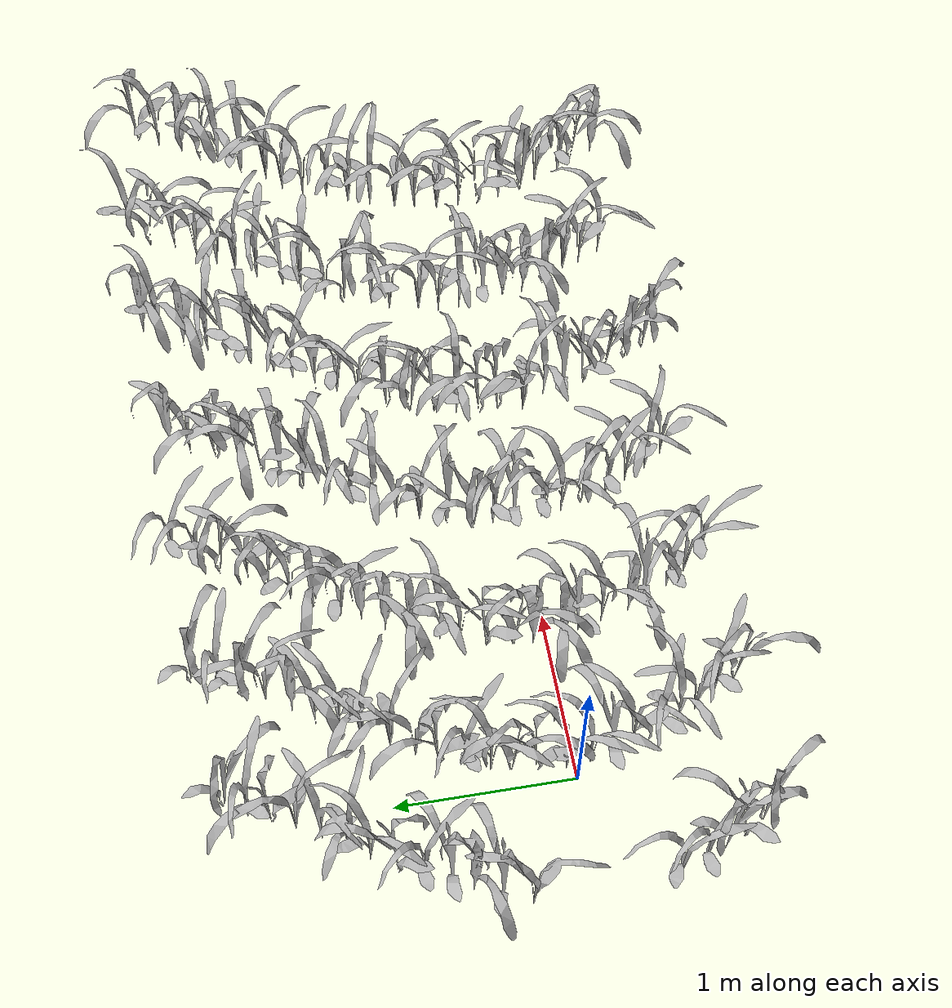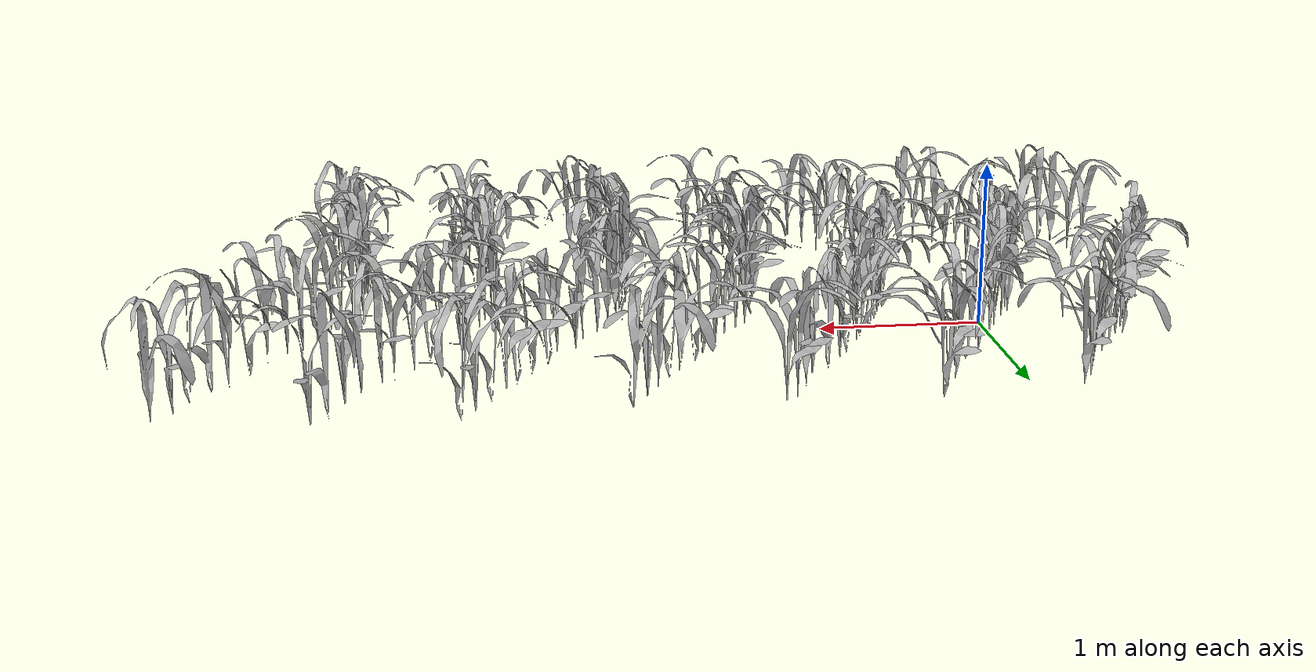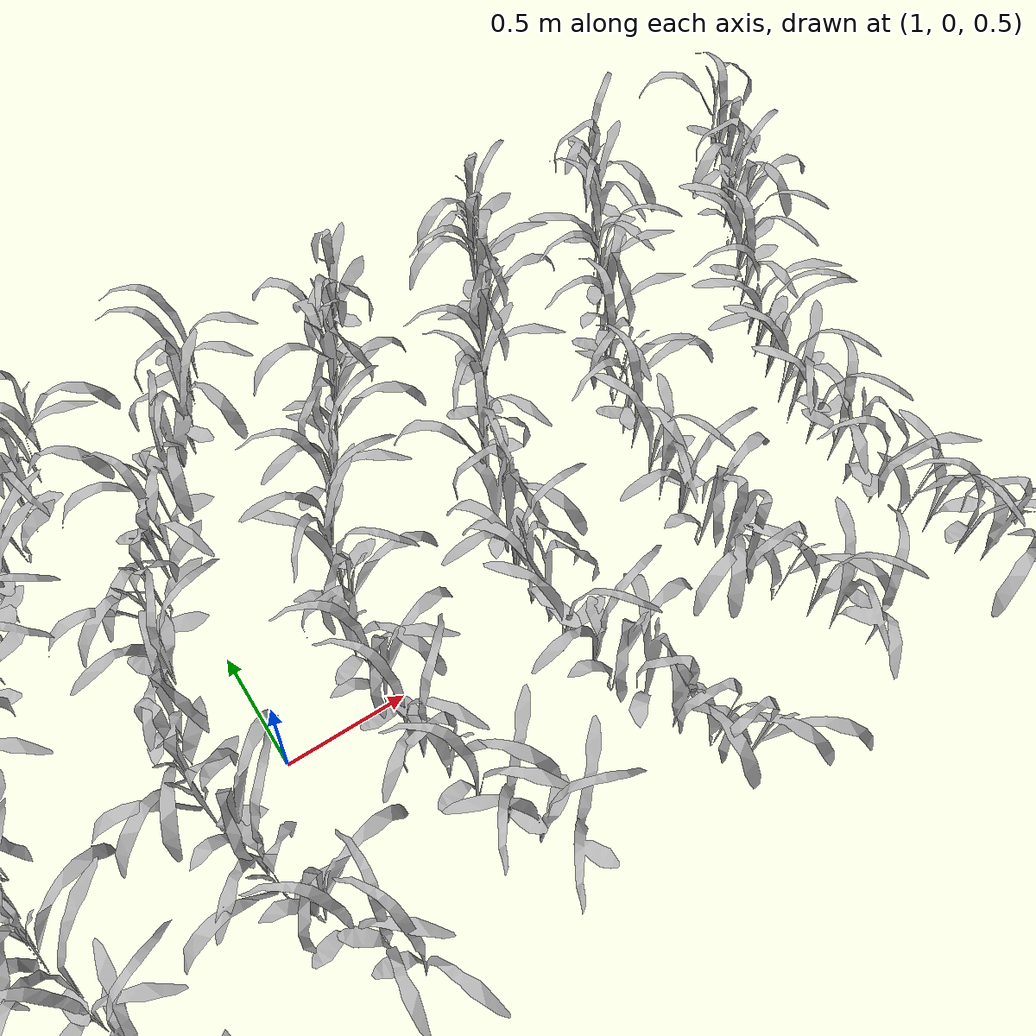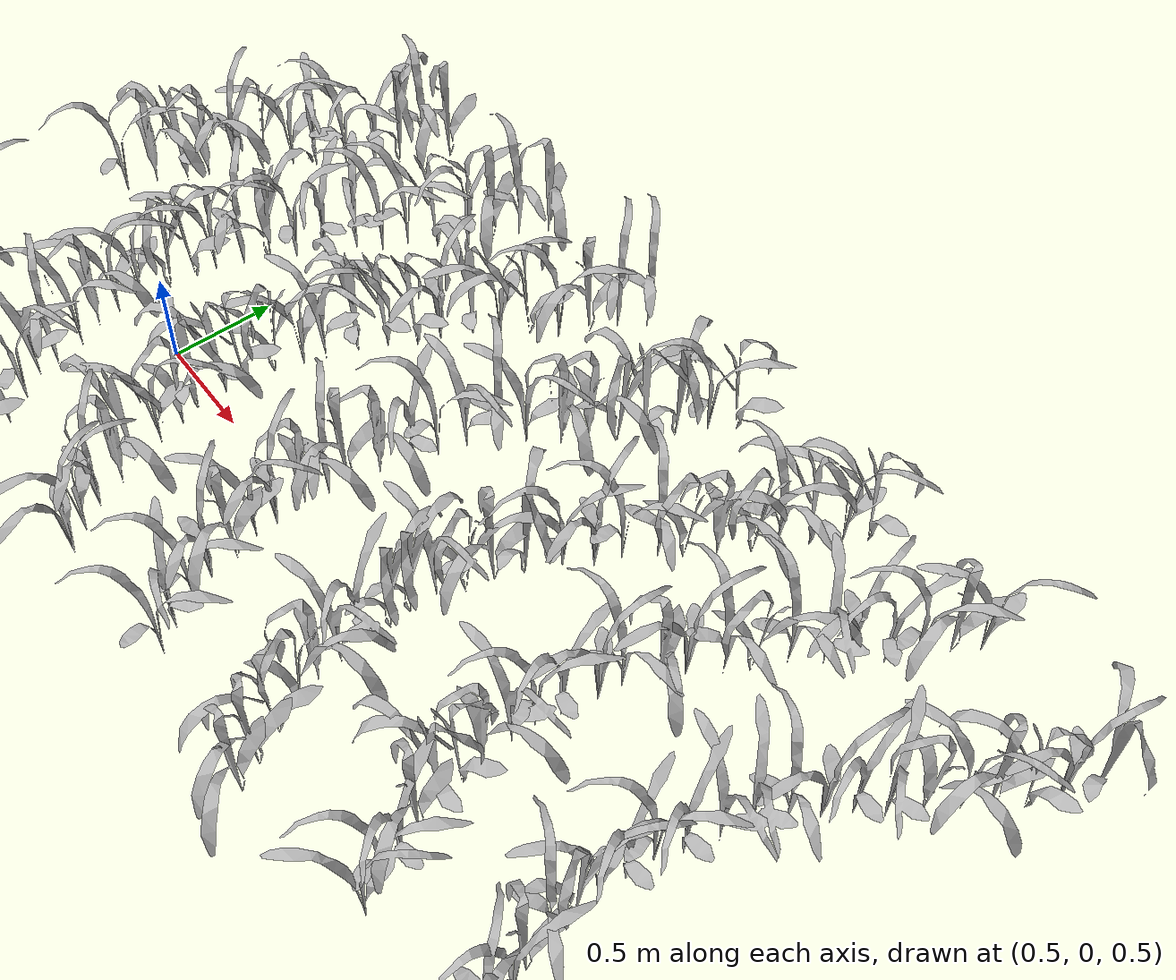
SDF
<sdf version="1.6">
 <world name="default">
  <include>
   <uri>model://maize_01</uri>
   <pose>-0.5193421399385876 -0.8425743116622424 0.3008109943421454 0.0 0.0 6.129078325100034</pose>
   <name>maize_01_0318</name>
   <static>true</static>
  </include>
  <include>
   <uri>model://maize_01</uri>
   <pose>-0.5843297468344935 -0.7257446552452291 0.3008109943421454 0.0 0.0 1.7412228312366416</pose>
   <name>maize_01_0319</name>
   <static>true</static>
  </include>
  <include>
   <uri>model://maize_01</uri>
   <pose>-0.6381630227629718 -0.6151111120036814 0.3008109943421454 0.0 0.0 5.690275100146369</pose>
   <name>maize_01_0320</name>
   <static>true</static>
  </include>
  <include>
   <uri>model://maize_02</uri>
   <pose>-0.7060839721660199 -0.4886356477250444 0.3008109943421454 0.0 0.0 1.194333937083195</pose>
   <name>maize_02_0321</name>
   <static>true</static>
  </include>
  <include>
   <uri>model://maize_02</uri>
   <pose>-0.7509907972718113 -0.34912016581223404 0.3008109943421454 0.0 0.0 0.7070137752818224</pose>
   <name>maize_02_0322</name>
   <static>true</static>
  </include>
  <include>
   <uri>model://maize_02</uri>
   <pose>-0.7623457780616263 0.40575249319412277 0.3008109943421454 0.0 0.0 3.412741791018782</pose>
   <name>maize_02_0328</name>
   <static>true</static>
  </include>
  <include>
   <uri>model://maize_01</uri>
   <pose>-0.7260552054485727 0.5522247924235348 0.3008109943421454 0.0 0.0 0.9995517884273661</pose>
   <name>maize_01_0329</name>
   <static>true</static>
  </include>
  <include>
   <uri>model://maize_01</uri>
   <pose>-0.6450530376927486 0.6921828360464375 0.300323468426876 0.0 0.0 4.209271339387144</pose>
   <name>maize_01_0330</name>
   <static>true</static>
  </include>
  <include>
   <uri>model://maize_01</uri>
   <pose>-0.5956651698752304 0.7871125555975038 0.300323468426876 0.0 0.0 1.1840262936846782</pose>
   <name>maize_01_0331</name>
   <static>true</static>
  </include>
  <include>
   <uri>model://maize_02</uri>
   <pose>-0.5398788706277953 0.9246943913390491 0.300323468426876 0.0 0.0 1.2259349892791234</pose>
   <name>maize_02_0332</name>
   <static>true</static>
  </include>
  <include>
   <uri>model://maize_01</uri>
   <pose>-0.47863496533905336 1.0465220439578806 0.300323468426876 0.0 0.0 2.0857641783296668</pose>
   <name>maize_01_0333</name>
   <static>true</static>
  </include>
  <include>
   <uri>model://maize_02</uri>
   <pose>-0.4024676206168627 1.178892006898993 0.300323468426876 0.0 0.0 6.085582201525513</pose>
   <name>maize_02_0334</name>
   <static>true</static>
  </include>
  <include>
   <uri>model://maize_02</uri>
   <pose>-0.3322917637060818 1.2768058146179195 0.300323468426876 0.0 0.0 4.849211667254839</pose>
   <name>maize_02_0335</name>
   <static>true</static>
  </include>
  <include>
   <uri>model://maize_02</uri>
   <pose>-0.24581871268566965 1.4027297807582217 0.300323468426876 0.0 0.0 2.5940223697329365</pose>
   <name>maize_02_0336</name>
   <static>true</static>
  </include>
  <include>
   <uri>model://maize_02</uri>
   <pose>-0.15880021170876832 1.5277808361949818 0.300323468426876 0.0 0.0 4.045171459450764</pose>
   <name>maize_02_0337</name>
   <static>true</static>
  </include>
  <include>
   <uri>model://maize_01</uri>
   <pose>-0.10515992230713131 1.645824972554106 0.300323468426876 0.0 0.0 2.979025273569747</pose>
   <name>maize_01_0338</name>
   <static>true</static>
  </include>
  <include>
   <uri>model://maize_02</uri>
   <pose>-0.05498484962593351 1.7614962295230738 0.300323468426876 0.0 0.0 1.8376888129937727</pose>
   <name>maize_02_0339</name>
   <static>true</static>
  </include>
  <include>
   <uri>model://maize_01</uri>
   <pose>0.017889371349934423 1.874134327287852 0.300323468426876 0.0 0.0 6.127388898055468</pose>
   <name>maize_01_0340</name>
   <static>true</static>
  </include>
  <include>
   <uri>model://maize_01</uri>
   <pose>0.29310044164908144 -0.8860894169142737 0.300992767274991 0.0 0.0 5.333849714358609</pose>
   <name>maize_01_0390</name>
   <static>true</static>
  </include>
  <include>
   <uri>model://maize_02</uri>
   <pose>0.24479959383449293 -0.7716862530171944 0.300992767274991 0.0 0.0 1.6357504998263952</pose>
   <name>maize_02_0391</name>
   <static>true</static>
  </include>
  <include>
   <uri>model://maize_02</uri>
   <pose>0.1506900196650676 -0.6382258349101029 0.300992767274991 0.0 0.0 3.6649556590804977</pose>
   <name>maize_02_0392</name>
   <static>true</static>
  </include>
  <include>
   <uri>model://maize_02</uri>
   <pose>0.09507091827192518 -0.530450999741549 0.300992767274991 0.0 0.0 5.633441093638289</pose>
   <name>maize_02_0393</name>
   <static>true</static>
  </include>
  <include>
   <uri>model://maize_02</uri>
   <pose>0.05522062345527281 -0.4248764495910249 0.300992767274991 0.0 0.0 1.7272257413413743</pose>
   <name>maize_02_0394</name>
   <static>true</static>
  </include>
  <include>
   <uri>model://maize_02</uri>
   <pose>0.024562521228354027 -0.2771264552350805 0.300992767274991 0.0 0.0 2.8964374295922726</pose>
   <name>maize_02_0395</name>
   <static>true</static>
  </include>
  <include>
   <uri>model://maize_01</uri>
   <pose>-0.040491953890083844 -0.15347373256288918 0.300992767274991 0.0 0.0 1.1783805618213135</pose>
   <name>maize_01_0396</name>
   <static>true</static>
  </include>
  <include>
   <uri>model://maize_02</uri>
   <pose>-0.05340020472456939 -0.03517271816053278 0.300992767274991 0.0 0.0 0.017659359035297594</pose>
   <name>maize_02_0397</name>
   <static>true</static>
  </include>
  <include>
   <uri>model://maize_02</uri>
   <pose>-0.06139555148971818 0.09376797554673313 0.300992767274991 0.0 0.0 0.06990992110246205</pose>
   <name>maize_02_0398</name>
   <static>true</static>
  </include>
  <include>
   <uri>model://maize_01</uri>
   <pose>-0.0458107045680751 0.2471718146078772 0.300992767274991 0.0 0.0 2.4450432982777937</pose>
   <name>maize_01_0399</name>
   <static>true</static>
  </include>
  <include>
   <uri>model://maize_01</uri>
   <pose>-0.03624133631612934 0.3831083113136169 0.300992767274991 0.0 0.0 5.153658926134716</pose>
   <name>maize_01_0400</name>
   <static>true</static>
  </include>
  <include>
   <uri>model://maize_02</uri>
   <pose>-0.014931779821386583 0.4856758209451517 0.300992767274991 0.0 0.0 6.175897748922585</pose>
   <name>maize_02_0401</name>
   <static>true</static>
  </include>
  <include>
   <uri>model://maize_02</uri>
   <pose>0.04208054572080335 0.6131618145748263 0.300992767274991 0.0 0.0 1.4534956075006615</pose>
   <name>maize_02_0402</name>
   <static>true</static>
  </include>
  <include>
   <uri>model://maize_01</uri>
   <pose>0.07196567328910877 0.7437399308839112 0.300992767274991 0.0 0.0 2.751032139572906</pose>
   <name>maize_01_0403</name>
   <static>true</static>
  </include>
  <include>
   <uri>model://maize_02</uri>
   <pose>0.14186967186705715 0.8563699847208748 0.300992767274991 0.0 0.0 3.65783142057337</pose>
   <name>maize_02_0404</name>
   <static>true</static>
  </include>
  <include>
   <uri>model://maize_02</uri>
   <pose>0.2178327354682448 0.9790729372612665 0.300992767274991 0.0 0.0 4.507062066728484</pose>
   <name>maize_02_0405</name>
   <static>true</static>
  </include>
  <include>
   <uri>model://maize_02</uri>
   <pose>0.2851913339362928 1.1224681123764528 0.300992767274991 0.0 0.0 4.731255371809838</pose>
   <name>maize_02_0406</name>
   <static>true</static>
  </include>
  <include>
   <uri>model://maize_02</uri>
   <pose>0.3666574391778237 1.22174069189009 0.300992767274991 0.0 0.0 2.769471225159092</pose>
   <name>maize_02_0407</name>
   <static>true</static>
  </include>
  <include>
   <uri>model://maize_02</uri>
   <pose>0.4105674159866275 1.3437758604008592 0.300992767274991 0.0 0.0 2.7368613028643223</pose>
   <name>maize_02_0408</name>
   <static>true</static>
  </include>
  <include>
   <uri>model://maize_01</uri>
   <pose>0.5036194422223186 1.4580580234425142 0.300992767274991 0.0 0.0 4.497726741439761</pose>
   <name>maize_01_0409</name>
   <static>true</static>
  </include>
  <include>
   <uri>model://maize_02</uri>
   <pose>0.5929992467011054 1.5855276316898081 0.300992767274991 0.0 0.0 3.863057793328461</pose>
   <name>maize_02_0410</name>
   <static>true</static>
  </include>
  <include>
   <uri>model://maize_01</uri>
   <pose>0.6319096664050086 1.7026898674835522 0.300992767274991 0.0 0.0 0.11527846108367626</pose>
   <name>maize_01_0411</name>
   <static>true</static>
  </include>
  <include>
   <uri>model://maize_02</uri>
   <pose>0.7004310678211592 1.8185177355660243 0.300992767274991 0.0 0.0 1.9101181722402536</pose>
   <name>maize_02_0412</name>
   <static>true</static>
  </include>
  <include>
   <uri>model://maize_01</uri>
   <pose>0.7588998785261489 1.9600575871465467 0.300992767274991 0.0 0.0 0.2954520805119012</pose>
   <name>maize_01_0413</name>
   <static>true</static>
  </include>
  <include>
   <uri>model://maize_02</uri>
   <pose>1.0594259353800133 -0.8723213644088579 0.3013609543107844 0.0 0.0 0.9524755892697118</pose>
   <name>maize_02_0462</name>
   <static>true</static>
  </include>
  <include>
   <uri>model://maize_02</uri>
   <pose>0.9825745957563219 -0.7734086298795269 0.3013609543107844 0.0 0.0 0.47164272091589515</pose>
   <name>maize_02_0463</name>
   <static>true</static>
  </include>
  <include>
   <uri>model://maize_02</uri>
   <pose>0.9088995600544709 -0.6612906004663788 0.3013609543107844 0.0 0.0 1.4137786994134323</pose>
   <name>maize_02_0464</name>
   <static>true</static>
  </include>
  <include>
   <uri>model://maize_01</uri>
   <pose>0.8529050528122644 -0.5185874571353242 0.3013609543107844 0.0 0.0 0.9946640179700644</pose>
   <name>maize_01_0465</name>
   <static>true</static>
  </include>
  <include>
   <uri>model://maize_01</uri>
   <pose>0.7864337316303531 -0.41527702898060137 0.3013609543107844 0.0 0.0 4.104652438197267</pose>
   <name>maize_01_0466</name>
   <static>true</static>
  </include>
  <include>
   <uri>model://maize_02</uri>
   <pose>0.7573430266312691 -0.2638900070198875 0.3013609543107844 0.0 0.0 6.121210518364737</pose>
   <name>maize_02_0467</name>
   <static>true</static>
  </include>
  <include>
   <uri>model://maize_01</uri>
   <pose>0.7285570176858591 -0.13194488558488768 0.3013609543107844 0.0 0.0 1.5023816805485106</pose>
   <name>maize_01_0468</name>
   <static>true</static>
  </include>
  <include>
   <uri>model://maize_01</uri>
   <pose>0.6884814830508021 -0.025377896382096067 0.3013609543107844 0.0 0.0 3.7021333226496247</pose>
   <name>maize_01_0469</name>
   <static>true</static>
  </include>
  <include>
   <uri>model://maize_01</uri>
   <pose>0.6826135882923123 0.12625363565048467 0.3013609543107844 0.0 0.0 4.481874119251847</pose>
   <name>maize_01_0470</name>
   <static>true</static>
  </include>
  <include>
   <uri>model://maize_01</uri>
   <pose>0.6823166707040815 0.232070558220179 0.3013609543107844 0.0 0.0 5.073687005555631</pose>
   <name>maize_01_0471</name>
   <static>true</static>
  </include>
  <include>
   <uri>model://maize_01</uri>
   <pose>0.7163537488430449 0.3755281661368379 0.3013609543107844 0.0 0.0 2.103100922404502</pose>
   <name>maize_01_0472</name>
   <static>true</static>
  </include>
  <include>
   <uri>model://maize_02</uri>
   <pose>0.7582873644109778 0.5100179574299111 0.3013609543107844 0.0 0.0 0.1437195182821017</pose>
   <name>maize_02_0473</name>
   <static>true</static>
  </include>
  <include>
   <uri>model://maize_02</uri>
   <pose>0.7916655407271811 0.6136760938541113 0.3013609543107844 0.0 0.0 5.523035314238387</pose>
   <name>maize_02_0474</name>
   <static>true</static>
  </include>
  <include>
   <uri>model://maize_01</uri>
   <pose>0.8388504268890002 0.7681197245285418 0.3013609543107844 0.0 0.0 3.7879424278950826</pose>
   <name>maize_01_0475</name>
   <static>true</static>
  </include>
  <include>
   <uri>model://maize_01</uri>
   <pose>0.8948070210163681 0.8970143601571856 0.3013609543107844 0.0 0.0 4.391158163309436</pose>
   <name>maize_01_0476</name>
   <static>true</static>
  </include>
  <include>
   <uri>model://maize_01</uri>
   <pose>0.9734318594767 1.0144455561265835 0.3013609543107844 0.0 0.0 4.598058178692002</pose>
   <name>maize_01_0477</name>
   <static>true</static>
  </include>
  <include>
   <uri>model://maize_02</uri>
   <pose>1.016624388023862 1.1195701095511839 0.3013609543107844 0.0 0.0 0.9317036422076139</pose>
   <name>maize_02_0478</name>
   <static>true</static>
  </include>
  <include>
   <uri>model://maize_01</uri>
   <pose>1.0985181250779934 1.2583045945080429 0.3013609543107844 0.0 0.0 3.743695767039848</pose>
   <name>maize_01_0479</name>
   <static>true</static>
  </include>
  <include>
   <uri>model://maize_02</uri>
   <pose>1.157908186827785 1.371106702580427 0.3013609543107844 0.0 0.0 0.13956611632215457</pose>
   <name>maize_02_0480</name>
   <static>true</static>
  </include>
  <include>
   <uri>model://maize_01</uri>
   <pose>1.2374695168402468 1.4879220210815813 0.3013609543107844 0.0 0.0 5.258637789828064</pose>
   <name>maize_01_0481</name>
   <static>true</static>
  </include>
  <include>
   <uri>model://maize_02</uri>
   <pose>1.3431732285283988 1.5833247949245586 0.3013609543107844 0.0 0.0 3.0945351834713564</pose>
   <name>maize_02_0482</name>
   <static>true</static>
  </include>
  <include>
   <uri>model://maize_01</uri>
   <pose>1.396117012333504 1.72759407908666 0.3013609543107844 0.0 0.0 5.778430112477176</pose>
   <name>maize_01_0483</name>
   <static>true</static>
  </include>
  <include>
   <uri>model://maize_02</uri>
   <pose>1.4626536439806948 1.846659943714813 0.3013609543107844 0.0 0.0 1.3717840660100005</pose>
   <name>maize_02_0484</name>
   <static>true</static>
  </include>
  <include>
   <uri>model://maize_02</uri>
   <pose>1.5369715143184013 1.9716876962906194 0.3013609543107844 0.0 0.0 1.4779334005614726</pose>
   <name>maize_02_0485</name>
   <static>true</static>
  </include>
  <include>
   <uri>model://maize_02</uri>
   <pose>1.7420520963892006 -0.8104296347520143 0.30118973022608164 0.0 0.0 3.018203676256052</pose>
   <name>maize_02_0536</name>
   <static>true</static>
  </include>
  <include>
   <uri>model://maize_02</uri>
   <pose>1.6596355398349434 -0.7029075574422838 0.30118973022608164 0.0 0.0 4.868626718457226</pose>
   <name>maize_02_0537</name>
   <static>true</static>
  </include>
  <include>
   <uri>model://maize_02</uri>
   <pose>1.6005109917809406 -0.5774462381233973 0.30118973022608164 0.0 0.0 3.01655657581233</pose>
   <name>maize_02_0538</name>
   <static>true</static>
  </include>
  <include>
   <uri>model://maize_02</uri>
   <pose>1.5407062198680233 -0.4570299232125945 0.30118973022608164 0.0 0.0 1.3180354274564017</pose>
   <name>maize_02_0539</name>
   <static>true</static>
  </include>
  <include>
   <uri>model://maize_01</uri>
   <pose>1.506839929506804 -0.3112250638671801 0.30118973022608164 0.0 0.0 6.206004155215983</pose>
   <name>maize_01_0540</name>
   <static>true</static>
  </include>
  <include>
   <uri>model://maize_02</uri>
   <pose>1.4669494267801546 -0.18636638831596272 0.30118973022608164 0.0 0.0 6.007061668860161</pose>
   <name>maize_02_0541</name>
   <static>true</static>
  </include>
  <include>
   <uri>model://maize_02</uri>
   <pose>1.458417299937994 -0.07546008909144117 0.30118973022608164 0.0 0.0 1.1396553347248146</pose>
   <name>maize_02_0542</name>
   <static>true</static>
  </include>
  <include>
   <uri>model://maize_01</uri>
   <pose>1.4509671516097657 0.0773880556907767 0.30118973022608164 0.0 0.0 1.0932727035424123</pose>
   <name>maize_01_0543</name>
   <static>true</static>
  </include>
  <include>
   <uri>model://maize_02</uri>
   <pose>1.4633871175065465 0.19692963330745553 0.30118973022608164 0.0 0.0 1.5397763734357572</pose>
   <name>maize_02_0544</name>
   <static>true</static>
  </include>
  <include>
   <uri>model://maize_01</uri>
   <pose>1.4503890165028703 0.3078920530525695 0.30118973022608164 0.0 0.0 5.99289600281309</pose>
   <name>maize_01_0545</name>
   <static>true</static>
  </include>
  <include>
   <uri>model://maize_01</uri>
   <pose>1.505415262656183 0.44362606855087816 0.30118973022608164 0.0 0.0 0.7560073895866867</pose>
   <name>maize_01_0546</name>
   <static>true</static>
  </include>
  <include>
   <uri>model://maize_02</uri>
   <pose>1.5526721378684616 0.5967182820604917 0.30118973022608164 0.0 0.0 4.435801246790721</pose>
   <name>maize_02_0547</name>
   <static>true</static>
  </include>
  <include>
   <uri>model://maize_02</uri>
   <pose>1.5690696843355922 0.7207099552274789 0.30118973022608164 0.0 0.0 2.882376273651292</pose>
   <name>maize_02_0548</name>
   <static>true</static>
  </include>
  <include>
   <uri>model://maize_02</uri>
   <pose>1.6347495374463878 0.8379784473715948 0.30118973022608164 0.0 0.0 5.2379210550008795</pose>
   <name>maize_02_0549</name>
   <static>true</static>
  </include>
  <include>
   <uri>model://maize_02</uri>
   <pose>1.7121785373899374 0.9596016809030223 0.30118973022608164 0.0 0.0 1.575264597948157</pose>
   <name>maize_02_0550</name>
   <static>true</static>
  </include>
  <include>
   <uri>model://maize_02</uri>
   <pose>1.775765186176385 1.069665115031975 0.30118973022608164 0.0 0.0 5.592035376189493</pose>
   <name>maize_02_0551</name>
   <static>true</static>
  </include>
  <include>
   <uri>model://maize_01</uri>
   <pose>1.8597774553713051 1.2024102795595726 0.30118973022608164 0.0 0.0 0.4289427292293915</pose>
   <name>maize_01_0552</name>
   <static>true</static>
  </include>
  <include>
   <uri>model://maize_01</uri>
   <pose>1.9157840003130076 1.3183282217678525 0.30118973022608164 0.0 0.0 0.8864388736582239</pose>
   <name>maize_01_0553</name>
   <static>true</static>
  </include>
  <include>
   <uri>model://maize_01</uri>
   <pose>2.0048731558627315 1.4180625479043434 0.30118973022608164 0.0 0.0 2.2813963625630547</pose>
   <name>maize_01_0554</name>
   <static>true</static>
  </include>
  <include>
   <uri>model://maize_01</uri>
   <pose>2.0639108587030455 1.5375697148852512 0.30118973022608164 0.0 0.0 3.9899257361094342</pose>
   <name>maize_01_0555</name>
   <static>true</static>
  </include>
  <include>
   <uri>model://maize_01</uri>
   <pose>2.134238144682832 1.6600296648688595 0.30118973022608164 0.0 0.0 2.9445421598110593</pose>
   <name>maize_01_0556</name>
   <static>true</static>
  </include>
  <include>
   <uri>model://maize_02</uri>
   <pose>2.1976265919449682 1.7993643901915448 0.30118973022608164 0.0 0.0 3.08998651678306</pose>
   <name>maize_02_0557</name>
   <static>true</static>
  </include>
  <include>
   <uri>model://maize_01</uri>
   <pose>2.2713793918833067 1.9083438022519401 0.30118973022608164 0.0 0.0 4.733698587204958</pose>
   <name>maize_01_0558</name>
   <static>true</static>
  </include>
  <include>
   <uri>model://maize_01</uri>
   <pose>2.4860091501456667 -0.8766904689447041 0.2999252172734692 0.0 0.0 0.060700832534276015</pose>
   <name>maize_01_0608</name>
   <static>true</static>
  </include>
  <include>
   <uri>model://maize_01</uri>
   <pose>2.4222185801574634 -0.757172707283442 0.2999252172734692 0.0 0.0 6.033431219490344</pose>
   <name>maize_01_0609</name>
   <static>true</static>
  </include>
  <include>
   <uri>model://maize_01</uri>
   <pose>2.346407800929879 -0.6155821077731332 0.2999252172734692 0.0 0.0 5.498941278383553</pose>
   <name>maize_01_0610</name>
   <static>true</static>
  </include>
  <include>
   <uri>model://maize_01</uri>
   <pose>2.3031392817905987 -0.48511384657783174 0.2999252172734692 0.0 0.0 1.93241108801958</pose>
   <name>maize_01_0611</name>
   <static>true</static>
  </include>
  <include>
   <uri>model://maize_01</uri>
   <pose>2.2423168296068967 -0.3584475510768097 0.2999252172734692 0.0 0.0 0.992515563015801</pose>
   <name>maize_01_0612</name>
   <static>true</static>
  </include>
  <include>
   <uri>model://maize_02</uri>
   <pose>2.2372478191979353 -0.23664945596259532 0.2999252172734692 0.0 0.0 5.478716905727515</pose>
   <name>maize_02_0613</name>
   <static>true</static>
  </include>
  <include>
   <uri>model://maize_02</uri>
   <pose>2.1806044365823203 -0.1095622543931831 0.2999252172734692 0.0 0.0 4.347226812094004</pose>
   <name>maize_02_0614</name>
   <static>true</static>
  </include>
  <include>
   <uri>model://maize_01</uri>
   <pose>2.207178189830617 0.03313096969750375 0.2999252172734692 0.0 0.0 2.7583883487457572</pose>
   <name>maize_01_0615</name>
   <static>true</static>
  </include>
  <include>
   <uri>model://maize_01</uri>
   <pose>2.19360987524455 0.14197550701350029 0.2999252172734692 0.0 0.0 2.7357398462058335</pose>
   <name>maize_01_0616</name>
   <static>true</static>
  </include>
  <include>
   <uri>model://maize_02</uri>
   <pose>2.20282516007732 0.27299607617086896 0.2999252172734692 0.0 0.0 5.333949941740357</pose>
   <name>maize_02_0617</name>
   <static>true</static>
  </include>
  <include>
   <uri>model://maize_01</uri>
   <pose>2.2489635716324505 0.3948615062301013 0.2999252172734692 0.0 0.0 1.9286934471365331</pose>
   <name>maize_01_0618</name>
   <static>true</static>
  </include>
  <include>
   <uri>model://maize_01</uri>
   <pose>2.2712599497952324 0.5262287264722032 0.2999252172734692 0.0 0.0 5.9370912503757305</pose>
   <name>maize_01_0619</name>
   <static>true</static>
  </include>
  <include>
   <uri>model://maize_01</uri>
   <pose>2.3290380822818433 0.6561711688636402 0.2999252172734692 0.0 0.0 3.1417585394118106</pose>
   <name>maize_01_0620</name>
   <static>true</static>
  </include>
  <include>
   <uri>model://maize_02</uri>
   <pose>2.393064685780897 0.8088421156144305 0.2999252172734692 0.0 0.0 3.3943452018239473</pose>
   <name>maize_02_0621</name>
   <static>true</static>
  </include>
  <include>
   <uri>model://maize_02</uri>
   <pose>2.4751848976336026 0.9192564832416512 0.2999252172734692 0.0 0.0 0.9053040994424517</pose>
   <name>maize_02_0622</name>
   <static>true</static>
  </include>
  <include>
   <uri>model://maize_02</uri>
   <pose>2.5193334741503906 1.0383400055074488 0.2999252172734692 0.0 0.0 2.773454930666537</pose>
   <name>maize_02_0623</name>
   <static>true</static>
  </include>
  <include>
   <uri>model://maize_02</uri>
   <pose>2.6185753608188618 1.157370587176165 0.2999252172734692 0.0 0.0 1.6086880976880924</pose>
   <name>maize_02_0624</name>
   <static>true</static>
  </include>
  <include>
   <uri>model://maize_01</uri>
   <pose>2.6729189605818666 1.2611662850408643 0.2999252172734692 0.0 0.0 1.6682354045450358</pose>
   <name>maize_01_0625</name>
   <static>true</static>
  </include>
  <include>
   <uri>model://maize_01</uri>
   <pose>2.7549812590613554 1.3789314393601926 0.2999252172734692 0.0 0.0 0.8320520577435486</pose>
   <name>maize_01_0626</name>
   <static>true</static>
  </include>
  <include>
   <uri>model://maize_01</uri>
   <pose>2.8323736455373423 1.518338458494209 0.2999252172734692 0.0 0.0 1.7232478981729258</pose>
   <name>maize_01_0627</name>
   <static>true</static>
  </include>
  <include>
   <uri>model://maize_02</uri>
   <pose>2.881736941111586 1.6184160472211497 0.2999252172734692 0.0 0.0 1.995434317139353</pose>
   <name>maize_02_0628</name>
   <static>true</static>
  </include>
  <include>
   <uri>model://maize_01</uri>
   <pose>2.9491917235889433 1.7528379466264996 0.2999252172734692 0.0 0.0 4.128955731299016</pose>
   <name>maize_01_0629</name>
   <static>true</static>
  </include>
  <include>
   <uri>model://maize_02</uri>
   <pose>3.0248883734465712 1.8825387253277805 0.2999252172734692 0.0 0.0 5.78803282539572</pose>
   <name>maize_02_0630</name>
   <static>true</static>
  </include>
  <include>
   <uri>model://maize_01</uri>
   <pose>3.0885231766936974 1.97767178610233 0.2999252172734692 0.0 0.0 4.252672881204657</pose>
   <name>maize_01_0631</name>
   <static>true</static>
  </include>
  <include>
   <uri>model://maize_02</uri>
   <pose>3.2183390198919506 -0.7655794099930906 0.30074704596046997 0.0 0.0 6.150772967279273</pose>
   <name>maize_02_0680</name>
   <static>true</static>
  </include>
  <include>
   <uri>model://maize_02</uri>
   <pose>3.1461481169008936 -0.6318454260321082 0.30074704596046997 0.0 0.0 3.2062947580963455</pose>
   <name>maize_02_0681</name>
   <static>true</static>
  </include>
  <include>
   <uri>model://maize_02</uri>
   <pose>3.119632934493489 -0.5320118053421454 0.30074704596046997 0.0 0.0 4.299877474387447</pose>
   <name>maize_02_0682</name>
   <static>true</static>
  </include>
  <include>
   <uri>model://maize_01</uri>
   <pose>3.0423123500406364 -0.3983581123063267 0.30074704596046997 0.0 0.0 6.130226694681326</pose>
   <name>maize_01_0683</name>
   <static>true</static>
  </include>
  <include>
   <uri>model://maize_01</uri>
   <pose>2.9990335808716617 -0.26182085208571837 0.30074704596046997 0.0 0.0 4.201779460801991</pose>
   <name>maize_01_0684</name>
   <static>true</static>
  </include>
  <include>
   <uri>model://maize_01</uri>
   <pose>2.9811650861304626 -0.14390855939681366 0.30074704596046997 0.0 0.0 4.803566344013115</pose>
   <name>maize_01_0685</name>
   <static>true</static>
  </include>
  <include>
   <uri>model://maize_01</uri>
   <pose>2.952447886789982 -0.022650927655352794 0.30074704596046997 0.0 0.0 1.0754012434366944</pose>
   <name>maize_01_0686</name>
   <static>true</static>
  </include>
  <include>
   <uri>model://maize_02</uri>
   <pose>2.9536674004766157 0.12305557174243045 0.30074704596046997 0.0 0.0 5.304061220657911</pose>
   <name>maize_02_0687</name>
   <static>true</static>
  </include>
  <include>
   <uri>model://maize_02</uri>
   <pose>2.947122923880724 0.2471364677911352 0.30074704596046997 0.0 0.0 3.2517728710507163</pose>
   <name>maize_02_0688</name>
   <static>true</static>
  </include>
  <include>
   <uri>model://maize_02</uri>
   <pose>2.9731658295902053 0.36171521758941805 0.30074704596046997 0.0 0.0 4.010742185328932</pose>
   <name>maize_02_0689</name>
   <static>true</static>
  </include>
  <include>
   <uri>model://maize_02</uri>
   <pose>3.0051883437056945 0.5284055764798155 0.30074704596046997 0.0 0.0 0.5147775184149356</pose>
   <name>maize_02_0690</name>
   <static>true</static>
  </include>
  <include>
   <uri>model://maize_02</uri>
   <pose>3.0341434327328907 0.6285525407793628 0.30074704596046997 0.0 0.0 2.1886498387406927</pose>
   <name>maize_02_0691</name>
   <static>true</static>
  </include>
  <include>
   <uri>model://maize_01</uri>
   <pose>3.0949853488484456 0.785062013746787 0.30074704596046997 0.0 0.0 0.2166678891313042</pose>
   <name>maize_01_0692</name>
   <static>true</static>
  </include>
  <include>
   <uri>model://maize_02</uri>
   <pose>3.132630179788186 0.8935118088298737 0.30074704596046997 0.0 0.0 0.4283370903628251</pose>
   <name>maize_02_0693</name>
   <static>true</static>
  </include>
  <include>
   <uri>model://maize_02</uri>
   <pose>3.22386289631413 1.0231893945759565 0.30074704596046997 0.0 0.0 1.9661144288206072</pose>
   <name>maize_02_0694</name>
   <static>true</static>
  </include>
  <include>
   <uri>model://maize_01</uri>
   <pose>3.2814936529165353 1.1241771792455328 0.30074704596046997 0.0 0.0 1.5716471489803368</pose>
   <name>maize_01_0695</name>
   <static>true</static>
  </include>
  <include>
   <uri>model://maize_02</uri>
   <pose>3.3512470202620266 1.266404763911851 0.30074704596046997 0.0 0.0 1.9594913920112313</pose>
   <name>maize_02_0696</name>
   <static>true</static>
  </include>
  <include>
   <uri>model://maize_02</uri>
   <pose>3.441978297480307 1.388761360558494 0.30074704596046997 0.0 0.0 4.62566364612152</pose>
   <name>maize_02_0697</name>
   <static>true</static>
  </include>
  <include>
   <uri>model://maize_02</uri>
   <pose>3.492836168194038 1.4893273937499993 0.30074704596046997 0.0 0.0 0.7565859561087307</pose>
   <name>maize_02_0698</name>
   <static>true</static>
  </include>
  <include>
   <uri>model://maize_02</uri>
   <pose>3.586817172692622 1.6042549175037906 0.30074704596046997 0.0 0.0 3.6124124156788753</pose>
   <name>maize_02_0699</name>
   <static>true</static>
  </include>
  <include>
   <uri>model://maize_02</uri>
   <pose>3.6543634270315737 1.7223791445709191 0.30074704596046997 0.0 0.0 2.8561451181022846</pose>
   <name>maize_02_0700</name>
   <static>true</static>
  </include>
  <include>
   <uri>model://maize_01</uri>
   <pose>3.7133581647714076 1.8659088610934849 0.30074704596046997 0.0 0.0 5.706696777397396</pose>
   <name>maize_01_0701</name>
   <static>true</static>
  </include>
  <include>
   <uri>model://maize_02</uri>
   <pose>3.7860048785521725 1.9731412679507863 0.30074704596046997 0.0 0.0 5.923381745050318</pose>
   <name>maize_02_0702</name>
   <static>true</static>
  </include>
  <include>
   <uri>model://maize_01</uri>
   <pose>3.9585210454697495 -0.8706041202180816 0.30007571624242935 0.0 0.0 4.267377220517789</pose>
   <name>maize_01_0752</name>
   <static>true</static>
  </include>
  <include>
   <uri>model://maize_01</uri>
   <pose>3.9131684153191513 -0.7368739191907216 0.30007571624242935 0.0 0.0 5.25937093506122</pose>
   <name>maize_01_0753</name>
   <static>true</static>
  </include>
  <include>
   <uri>model://maize_02</uri>
   <pose>3.851894279355368 -0.6510614865366697 0.30007571624242935 0.0 0.0 1.3068944548019554</pose>
   <name>maize_02_0754</name>
   <static>true</static>
  </include>
  <include>
   <uri>model://maize_02</uri>
   <pose>3.8079496473887167 -0.4988310979177759 0.30007571624242935 0.0 0.0 3.6490259569999433</pose>
   <name>maize_02_0755</name>
   <static>true</static>
  </include>
  <include>
   <uri>model://maize_01</uri>
   <pose>3.7548230992618796 -0.39940890416863506 0.30007571624242935 0.0 0.0 5.994373227121132</pose>
   <name>maize_01_0756</name>
   <static>true</static>
  </include>
  <include>
   <uri>model://maize_02</uri>
   <pose>3.7201603978898854 -0.2581439995651589 0.30007571624242935 0.0 0.0 1.6305392333995186</pose>
   <name>maize_02_0757</name>
   <static>true</static>
  </include>
  <include>
   <uri>model://maize_01</uri>
   <pose>3.698233568224979 -0.12171653546097147 0.30007571624242935 0.0 0.0 2.248200737820206</pose>
   <name>maize_01_0758</name>
   <static>true</static>
  </include>
  <include>
   <uri>model://maize_02</uri>
   <pose>3.6951009267688635 -0.005944562808449773 0.30007571624242935 0.0 0.0 0.0577390669601655</pose>
   <name>maize_02_0759</name>
   <static>true</static>
  </include>
  <include>
   <uri>model://maize_02</uri>
   <pose>3.696791414072732 0.12832071798698344 0.30007571624242935 0.0 0.0 4.1882570840624895</pose>
   <name>maize_02_0760</name>
   <static>true</static>
  </include>
  <include>
   <uri>model://maize_02</uri>
   <pose>3.7017553430539083 0.26307913254413084 0.30007571624242935 0.0 0.0 2.9236765358216448</pose>
   <name>maize_02_0761</name>
   <static>true</static>
  </include>
  <include>
   <uri>model://maize_02</uri>
   <pose>3.7465896791399365 0.3770160357164507 0.30007571624242935 0.0 0.0 4.200633969055045</pose>
   <name>maize_02_0762</name>
   <static>true</static>
  </include>
  <include>
   <uri>model://maize_02</uri>
   <pose>3.7924349490987934 0.5216195058595832 0.30007571624242935 0.0 0.0 5.008212237267057</pose>
   <name>maize_02_0763</name>
   <static>true</static>
  </include>
  <include>
   <uri>model://maize_02</uri>
   <pose>3.832551166415379 0.6494990443840714 0.30007571624242935 0.0 0.0 4.653686016834566</pose>
   <name>maize_02_0764</name>
   <static>true</static>
  </include>
  <include>
   <uri>model://maize_02</uri>
   <pose>3.8954346344116777 0.7704876366345392 0.30007571624242935 0.0 0.0 1.679682440729397</pose>
   <name>maize_02_0765</name>
   <static>true</static>
  </include>
  <include>
   <uri>model://maize_02</uri>
   <pose>3.952429991055936 0.9108249655442171 0.30007571624242935 0.0 0.0 0.473594709387812</pose>
   <name>maize_02_0766</name>
   <static>true</static>
  </include>
  <include>
   <uri>model://maize_02</uri>
   <pose>4.01579878241376 1.0281074651119513 0.30007571624242935 0.0 0.0 4.003098890622793</pose>
   <name>maize_02_0767</name>
   <static>true</static>
  </include>
  <include>
   <uri>model://maize_02</uri>
   <pose>4.105051323353922 1.1164291849020451 0.30007571624242935 0.0 0.0 4.371199799674375</pose>
   <name>maize_02_0768</name>
   <static>true</static>
  </include>
  <include>
   <uri>model://maize_01</uri>
   <pose>4.17465413994445 1.2527690577815866 0.30007571624242935 0.0 0.0 0.8094945275516212</pose>
   <name>maize_01_0769</name>
   <static>true</static>
  </include>
  <include>
   <uri>model://maize_02</uri>
   <pose>4.253484833571229 1.3914940753630367 0.30007571624242935 0.0 0.0 5.5575888899990415</pose>
   <name>maize_02_0770</name>
   <static>true</static>
  </include>
  <include>
   <uri>model://maize_01</uri>
   <pose>4.314588316065602 1.4920706025487454 0.30007571624242935 0.0 0.0 5.538400220125188</pose>
   <name>maize_01_0771</name>
   <static>true</static>
  </include>
  <include>
   <uri>model://maize_01</uri>
   <pose>4.403013037314882 1.6012998115978168 0.30007571624242935 0.0 0.0 4.370321660548497</pose>
   <name>maize_01_0772</name>
   <static>true</static>
  </include>
  <include>
   <uri>model://maize_02</uri>
   <pose>4.456847381740013 1.732365217431589 0.30007571624242935 0.0 0.0 0.3437884853360722</pose>
   <name>maize_02_0773</name>
   <static>true</static>
  </include>
  <include>
   <uri>model://maize_01</uri>
   <pose>4.535578827777555 1.8550979457706005 0.30007571624242935 0.0 0.0 3.0821232058091943</pose>
   <name>maize_01_0774</name>
   <static>true</static>
  </include>
 </world>
</sdf>
